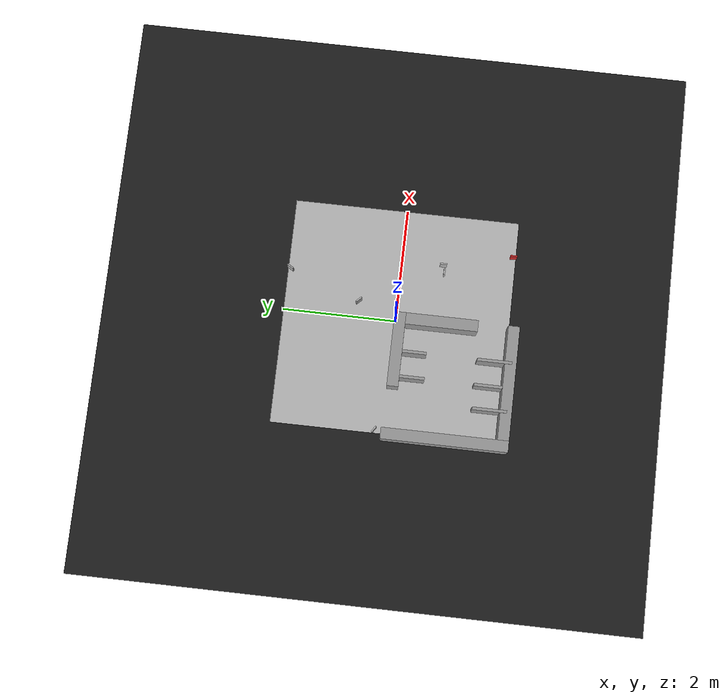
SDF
<sdf version="1.7">
 <world name="default">
  <scene>
   <ambient>0.8 0.8 0.8 1</ambient>
   <shadows>0</shadows>
   <grid>0</grid>
   <background>0.7 0.7 0.7 1</background>
  </scene>
  <model name="course">
   <static>1</static>
   <link name="course_link">
    <collision name="course_collision">
     <geometry><plane><normal>0 0 1</normal><size>4 4</size></plane></geometry>
     <surface><friction><ode><mu>100</mu><mu2>50</mu2></ode></friction></surface>
    </collision>
    <visual name="course_visual">
     <cast_shadows>0</cast_shadows>
     <geometry><plane><normal>0 0 1</normal><size>4 4</size></plane></geometry>
     <material>
      <script>
       <uri>model://turtlebot3_autorace_2020/course/materials/scripts</uri>
       <uri>model://turtlebot3_autorace_2020/course/materials/textures</uri>
       <name>course</name>
      </script>
     </material>
    </visual>
   </link>
   <pose>0 0 0 0 0 -3.14</pose>
  </model>
  <model name="traffic_light">
   <link name="traffic_light">
    <collision name="collision"><geometry><box><size>0.12 0.025 0.25</size></box></geometry></collision>
    <visual name="visual">
     <geometry><box><size>0.12 0.025 0.25</size></box></geometry>
     <material>
      <script>
       <uri>model://turtlebot3_autorace_2020/traffic_light/materials/scripts</uri>
       <uri>model://turtlebot3_autorace_2020/traffic_light/materials/textures</uri>
       <name>traffic_light_red</name>
      </script>
     </material>
    </visual>
   </link>
   <plugin name="traffic_light_plugin" filename="libtraffic_light_plugin.so"/>
   <static>1</static>
   <pose>1.35228 -1.94995 0.13 0 0 -1.57</pose>
  </model>
  <model name="traffic_parking">
   <static>1</static>
   <link name="box">
    <collision name="collision"><geometry><box><size>0.12 0.025 0.25</size></box></geometry></collision>
    <visual name="visual">
     <geometry><box><size>0.12 0.025 0.25</size></box></geometry>
     <material>
      <script>
       <uri>model://turtlebot3_autorace_2020/traffic_parking/materials/scripts</uri>
       <uri>model://turtlebot3_autorace_2020/traffic_parking/materials/textures</uri>
       <name>traffic_parking</name>
      </script>
     </material>
    </visual>
   </link>
   <pose>0.740621 1.95106 0.130019 -0.009294 0.015839 -2.10067</pose>
  </model>
  <model name="traffic_noentry">
   <static>1</static>
   <link name="box">
    <collision name="collision"><geometry><box><size>0.12 0.025 0.25</size></box></geometry></collision>
    <visual name="visual">
     <geometry><box><size>0.12 0.025 0.25</size></box></geometry>
     <material>
      <script>
       <uri>model://turtlebot3_autorace_2020/traffic_noentry/materials/scripts</uri>
       <uri>model://turtlebot3_autorace_2020/traffic_noentry/materials/textures</uri>
       <name>traffic_noentry</name>
      </script>
     </material>
    </visual>
   </link>
   <pose>0.95 -0.758 0.125 0 -0 0</pose>
  </model>
  <model name="traffic_right">
   <static>1</static>
   <link name="box">
    <collision name="collision"><geometry><box><size>0.12 0.025 0.25</size></box></geometry></collision>
    <visual name="visual">
     <geometry><box><size>0.12 0.025 0.25</size></box></geometry>
     <material>
      <script>
       <uri>model://turtlebot3_autorace_2020/traffic_right/materials/scripts</uri>
       <uri>model://turtlebot3_autorace_2020/traffic_right/materials/textures</uri>
       <name>traffic_right</name>
      </script>
     </material>
    </visual>
   </link>
   <pose>1.08 -0.728 0.125 0 0 -1.57</pose>
  </model>
  <light name="sun" type="directional">
   <pose>0 0 10 0 -0 0</pose>
   <diffuse>0.8 0.8 0.8 1</diffuse>
   <specular>0.1 0.1 0.1 1</specular>
   <attenuation>
    <range>1000</range>
    <constant>0.9</constant>
    <linear>0.01</linear>
    <quadratic>0.001</quadratic>
   </attenuation>
   <direction>-0.5 0.5 -1</direction>
   <spot><inner_angle>0</inner_angle><outer_angle>0</outer_angle><falloff>0</falloff></spot>
  </light>
  <model name="ground2">
   <pose>0.019006 0.209731 -0.1 0 -0 0</pose>
   <static>1</static>
   <link name="ground">
    <collision name="ground_coll"><geometry><box><size>8 8 0.01</size></box></geometry></collision>
    <visual name="ground_vis">
     <geometry><box><size>10 10 0.01</size></box></geometry>
     <material>
      <script><uri>file://media/materials/scripts/gazebo.material</uri><name>Gazebo/FlatBlack</name></script>
     </material>
    </visual>
   </link>
  </model>
  <gravity>0 0 -9.8</gravity>
  <magnetic_field>6e-06 2.3e-05 -4.2e-05</magnetic_field>
  <atmosphere type="adiabatic"/>
  <physics name="default_physics" default="0" type="ode">
   <max_step_size>0.001</max_step_size>
   <real_time_factor>1</real_time_factor>
   <real_time_update_rate>1000</real_time_update_rate>
  </physics>
  <spherical_coordinates>
   <surface_model>EARTH_WGS84</surface_model>
   <latitude_deg>0</latitude_deg>
   <longitude_deg>0</longitude_deg>
   <elevation>0</elevation>
   <heading_deg>0</heading_deg>
  </spherical_coordinates>
  <light name="user_point_light_1" type="point">
   <pose>-1.64815 0.604519 1 0 -0 0</pose>
   <diffuse>0.5 0.5 0.5 1</diffuse>
   <specular>0.1 0.1 0.1 1</specular>
   <attenuation>
    <range>20</range>
    <constant>0.5</constant>
    <linear>0.01</linear>
    <quadratic>0.001</quadratic>
   </attenuation>
   <cast_shadows>0</cast_shadows>
   <direction>0 0 -1</direction>
   <spot><inner_angle>0</inner_angle><outer_angle>0</outer_angle><falloff>0</falloff></spot>
  </light>
  <light name="user_point_light_2" type="point">
   <pose>1.63854 1.69565 1 0 -0 0</pose>
   <diffuse>0.5 0.5 0.5 1</diffuse>
   <specular>0.1 0.1 0.1 1</specular>
   <attenuation>
    <range>20</range>
    <constant>0.5</constant>
    <linear>0.01</linear>
    <quadratic>0.001</quadratic>
   </attenuation>
   <cast_shadows>0</cast_shadows>
   <direction>0 0 -1</direction>
   <spot><inner_angle>0</inner_angle><outer_angle>0</outer_angle><falloff>0</falloff></spot>
  </light>
  <light name="user_point_light_3" type="point">
   <pose>0.42 -3.31 1 0 -0 0</pose>
   <diffuse>0.5 0.5 0.5 1</diffuse>
   <specular>0.1 0.1 0.1 1</specular>
   <attenuation>
    <range>20</range>
    <constant>0.5</constant>
    <linear>0.01</linear>
    <quadratic>0.001</quadratic>
   </attenuation>
   <cast_shadows>0</cast_shadows>
   <direction>0 0 -1</direction>
   <spot><inner_angle>0</inner_angle><outer_angle>0</outer_angle><falloff>0</falloff></spot>
  </light>
  <audio><device>default</device></audio>
  <model name="unit_box_0_0">
   <link name="link">
    <inertial>
     <mass>1</mass>
     <inertia>
      <ixx>0.166667</ixx>
      <ixy>0</ixy>
      <ixz>0</ixz>
      <iyy>0.166667</iyy>
      <iyz>0</iyz>
      <izz>0.166667</izz>
     </inertia>
    </inertial>
    <visual name="visual">
     <geometry><box><size>0.2 1.46 0.5</size></box></geometry>
     <material>
      <script><name>Gazebo/Grey</name><uri>file://media/materials/scripts/gazebo.material</uri></script>
      <shader type="pixel"><normal_map>__default__</normal_map></shader>
      <ambient>0.3 0.3 0.3 1</ambient>
      <diffuse>0.7 0.7 0.7 1</diffuse>
      <specular>0.01 0.01 0.01 1</specular>
      <emissive>0 0 0 1</emissive>
     </material>
    </visual>
    <collision name="collision">
     <geometry><box><size>0.2 1.46 0.5</size></box></geometry>
     <surface>
      <friction>
       <ode><mu>1</mu><mu2>1</mu2><fdir1>0 0 0</fdir1><slip1>0</slip1><slip2>0</slip2></ode>
       <torsional>
        <coefficient>1</coefficient>
        <patch_radius>0</patch_radius>
        <surface_radius>0</surface_radius>
        <use_patch_radius>1</use_patch_radius>
        <ode><slip>0</slip></ode>
       </torsional>
      </friction>
      <bounce><restitution_coefficient>0</restitution_coefficient><threshold>1e+06</threshold></bounce>
      <contact>
       <collide_without_contact>0</collide_without_contact>
       <collide_without_contact_bitmask>1</collide_without_contact_bitmask>
       <collide_bitmask>1</collide_bitmask>
       <ode>
        <soft_cfm>0</soft_cfm>
        <soft_erp>0.2</soft_erp>
        <kp>1e+13</kp>
        <kd>1</kd>
        <max_vel>0.01</max_vel>
        <min_depth>0</min_depth>
       </ode>
       <bullet>
        <split_impulse>1</split_impulse>
        <split_impulse_penetration_threshold>-0.01</split_impulse_penetration_threshold>
        <soft_cfm>0</soft_cfm>
        <soft_erp>0.2</soft_erp>
        <kp>1e+13</kp>
        <kd>1</kd>
       </bullet>
      </contact>
     </surface>
    </collision>
   </link>
   <static>1</static>
   <pose>-0.000186 -0.697501 0.244963 0 -0 0</pose>
  </model>
  <model name="unit_line_4_clone_0_clone_0_clone_1_clone">
   <link name="link">
    <inertial>
     <mass>1</mass>
     <inertia>
      <ixx>0.166667</ixx>
      <ixy>0</ixy>
      <ixz>0</ixz>
      <iyy>0.166667</iyy>
      <iyz>0</iyz>
      <izz>0.166667</izz>
     </inertia>
    </inertial>
    <visual name="visual">
     <geometry><box><size>0.05 0.6 0.5</size></box></geometry>
     <material>
      <script><name>Gazebo/Grey</name><uri>file://media/materials/scripts/gazebo.material</uri></script>
      <shader type="pixel"><normal_map>__default__</normal_map></shader>
      <ambient>0.3 0.3 0.3 1</ambient>
      <diffuse>0.7 0.7 0.7 1</diffuse>
      <specular>0.01 0.01 0.01 1</specular>
      <emissive>0 0 0 1</emissive>
     </material>
    </visual>
    <collision name="collision">
     <geometry><box><size>0.05 0.6 0.5</size></box></geometry>
     <surface>
      <friction>
       <ode><mu>1</mu><mu2>1</mu2><fdir1>0 0 0</fdir1><slip1>0</slip1><slip2>0</slip2></ode>
       <torsional>
        <coefficient>1</coefficient>
        <patch_radius>0</patch_radius>
        <surface_radius>0</surface_radius>
        <use_patch_radius>1</use_patch_radius>
        <ode><slip>0</slip></ode>
       </torsional>
      </friction>
      <bounce><restitution_coefficient>0</restitution_coefficient><threshold>1e+06</threshold></bounce>
      <contact>
       <collide_without_contact>0</collide_without_contact>
       <collide_without_contact_bitmask>1</collide_without_contact_bitmask>
       <collide_bitmask>1</collide_bitmask>
       <ode>
        <soft_cfm>0</soft_cfm>
        <soft_erp>0.2</soft_erp>
        <kp>1e+13</kp>
        <kd>1</kd>
        <max_vel>0.01</max_vel>
        <min_depth>0</min_depth>
       </ode>
       <bullet>
        <split_impulse>1</split_impulse>
        <split_impulse_penetration_threshold>-0.01</split_impulse_penetration_threshold>
        <soft_cfm>0</soft_cfm>
        <soft_erp>0.2</soft_erp>
        <kp>1e+13</kp>
        <kd>1</kd>
       </bullet>
      </contact>
     </surface>
    </collision>
   </link>
   <static>1</static>
   <pose>-0.573492 -0.288703 0.237034 0 -0 0</pose>
  </model>
  <model name="unit_line_4_clone_0_clone_0_clone_1">
   <link name="link">
    <inertial>
     <mass>1</mass>
     <inertia>
      <ixx>0.166667</ixx>
      <ixy>0</ixy>
      <ixz>0</ixz>
      <iyy>0.166667</iyy>
      <iyz>0</iyz>
      <izz>0.166667</izz>
     </inertia>
    </inertial>
    <visual name="visual">
     <geometry><box><size>0.05 0.6 0.5</size></box></geometry>
     <material>
      <script><name>Gazebo/Grey</name><uri>file://media/materials/scripts/gazebo.material</uri></script>
      <shader type="pixel"><normal_map>__default__</normal_map></shader>
      <ambient>0.3 0.3 0.3 1</ambient>
      <diffuse>0.7 0.7 0.7 1</diffuse>
      <specular>0.01 0.01 0.01 1</specular>
      <emissive>0 0 0 1</emissive>
     </material>
    </visual>
    <collision name="collision">
     <geometry><box><size>0.05 0.6 0.5</size></box></geometry>
     <surface>
      <friction>
       <ode><mu>1</mu><mu2>1</mu2><fdir1>0 0 0</fdir1><slip1>0</slip1><slip2>0</slip2></ode>
       <torsional>
        <coefficient>1</coefficient>
        <patch_radius>0</patch_radius>
        <surface_radius>0</surface_radius>
        <use_patch_radius>1</use_patch_radius>
        <ode><slip>0</slip></ode>
       </torsional>
      </friction>
      <bounce><restitution_coefficient>0</restitution_coefficient><threshold>1e+06</threshold></bounce>
      <contact>
       <collide_without_contact>0</collide_without_contact>
       <collide_without_contact_bitmask>1</collide_without_contact_bitmask>
       <collide_bitmask>1</collide_bitmask>
       <ode>
        <soft_cfm>0</soft_cfm>
        <soft_erp>0.2</soft_erp>
        <kp>1e+13</kp>
        <kd>1</kd>
        <max_vel>0.01</max_vel>
        <min_depth>0</min_depth>
       </ode>
       <bullet>
        <split_impulse>1</split_impulse>
        <split_impulse_penetration_threshold>-0.01</split_impulse_penetration_threshold>
        <soft_cfm>0</soft_cfm>
        <soft_erp>0.2</soft_erp>
        <kp>1e+13</kp>
        <kd>1</kd>
       </bullet>
      </contact>
     </surface>
    </collision>
   </link>
   <static>1</static>
   <pose>-1.01333 -0.301704 0.230222 0 -0 0</pose>
  </model>
  <model name="unit_line_4_clone_0_clone_0_clone">
   <link name="link">
    <inertial>
     <mass>1</mass>
     <inertia>
      <ixx>0.166667</ixx>
      <ixy>0</ixy>
      <ixz>0</ixz>
      <iyy>0.166667</iyy>
      <iyz>0</iyz>
      <izz>0.166667</izz>
     </inertia>
    </inertial>
    <visual name="visual">
     <geometry><box><size>0.05 0.6 0.5</size></box></geometry>
     <material>
      <script><name>Gazebo/Grey</name><uri>file://media/materials/scripts/gazebo.material</uri></script>
      <shader type="pixel"><normal_map>__default__</normal_map></shader>
      <ambient>0.3 0.3 0.3 1</ambient>
      <diffuse>0.7 0.7 0.7 1</diffuse>
      <specular>0.01 0.01 0.01 1</specular>
      <emissive>0 0 0 1</emissive>
     </material>
    </visual>
    <collision name="collision">
     <geometry><box><size>0.05 0.6 0.5</size></box></geometry>
     <surface>
      <friction>
       <ode><mu>1</mu><mu2>1</mu2><fdir1>0 0 0</fdir1><slip1>0</slip1><slip2>0</slip2></ode>
       <torsional>
        <coefficient>1</coefficient>
        <patch_radius>0</patch_radius>
        <surface_radius>0</surface_radius>
        <use_patch_radius>1</use_patch_radius>
        <ode><slip>0</slip></ode>
       </torsional>
      </friction>
      <bounce><restitution_coefficient>0</restitution_coefficient><threshold>1e+06</threshold></bounce>
      <contact>
       <collide_without_contact>0</collide_without_contact>
       <collide_without_contact_bitmask>1</collide_without_contact_bitmask>
       <collide_bitmask>1</collide_bitmask>
       <ode>
        <soft_cfm>0</soft_cfm>
        <soft_erp>0.2</soft_erp>
        <kp>1e+13</kp>
        <kd>1</kd>
        <max_vel>0.01</max_vel>
        <min_depth>0</min_depth>
       </ode>
       <bullet>
        <split_impulse>1</split_impulse>
        <split_impulse_penetration_threshold>-0.01</split_impulse_penetration_threshold>
        <soft_cfm>0</soft_cfm>
        <soft_erp>0.2</soft_erp>
        <kp>1e+13</kp>
        <kd>1</kd>
       </bullet>
      </contact>
     </surface>
    </collision>
   </link>
   <static>1</static>
   <pose>-0.58014 -1.77121 0.256353 0 -0 0</pose>
  </model>
  <model name="unit_line_4_clone_0_clone_0">
   <link name="link">
    <inertial>
     <mass>1</mass>
     <inertia>
      <ixx>0.166667</ixx>
      <ixy>0</ixy>
      <ixz>0</ixz>
      <iyy>0.166667</iyy>
      <iyz>0</iyz>
      <izz>0.166667</izz>
     </inertia>
    </inertial>
    <visual name="visual">
     <geometry><box><size>0.05 0.6 0.5</size></box></geometry>
     <material>
      <script><name>Gazebo/Grey</name><uri>file://media/materials/scripts/gazebo.material</uri></script>
      <shader type="pixel"><normal_map>__default__</normal_map></shader>
      <ambient>0.3 0.3 0.3 1</ambient>
      <diffuse>0.7 0.7 0.7 1</diffuse>
      <specular>0.01 0.01 0.01 1</specular>
      <emissive>0 0 0 1</emissive>
     </material>
    </visual>
    <collision name="collision">
     <geometry><box><size>0.05 0.6 0.5</size></box></geometry>
     <surface>
      <friction>
       <ode><mu>1</mu><mu2>1</mu2><fdir1>0 0 0</fdir1><slip1>0</slip1><slip2>0</slip2></ode>
       <torsional>
        <coefficient>1</coefficient>
        <patch_radius>0</patch_radius>
        <surface_radius>0</surface_radius>
        <use_patch_radius>1</use_patch_radius>
        <ode><slip>0</slip></ode>
       </torsional>
      </friction>
      <bounce><restitution_coefficient>0</restitution_coefficient><threshold>1e+06</threshold></bounce>
      <contact>
       <collide_without_contact>0</collide_without_contact>
       <collide_without_contact_bitmask>1</collide_without_contact_bitmask>
       <collide_bitmask>1</collide_bitmask>
       <ode>
        <soft_cfm>0</soft_cfm>
        <soft_erp>0.2</soft_erp>
        <kp>1e+13</kp>
        <kd>1</kd>
        <max_vel>0.01</max_vel>
        <min_depth>0</min_depth>
       </ode>
       <bullet>
        <split_impulse>1</split_impulse>
        <split_impulse_penetration_threshold>-0.01</split_impulse_penetration_threshold>
        <soft_cfm>0</soft_cfm>
        <soft_erp>0.2</soft_erp>
        <kp>1e+13</kp>
        <kd>1</kd>
       </bullet>
      </contact>
     </surface>
    </collision>
   </link>
   <static>1</static>
   <pose>-1.01443 -1.75808 0.214041 0 -0 0</pose>
  </model>
  <model name="unit_line_4_clone_0_clone_0_clone_0">
   <link name="link">
    <inertial>
     <mass>1</mass>
     <inertia>
      <ixx>0.166667</ixx>
      <ixy>0</ixy>
      <ixz>0</ixz>
      <iyy>0.166667</iyy>
      <iyz>0</iyz>
      <izz>0.166667</izz>
     </inertia>
    </inertial>
    <visual name="visual">
     <geometry><box><size>0.05 0.6 0.5</size></box></geometry>
     <material>
      <script><name>Gazebo/Grey</name><uri>file://media/materials/scripts/gazebo.material</uri></script>
      <shader type="pixel"><normal_map>__default__</normal_map></shader>
      <ambient>0.3 0.3 0.3 1</ambient>
      <diffuse>0.7 0.7 0.7 1</diffuse>
      <specular>0.01 0.01 0.01 1</specular>
      <emissive>0 0 0 1</emissive>
     </material>
    </visual>
    <collision name="collision">
     <geometry><box><size>0.05 0.6 0.5</size></box></geometry>
     <surface>
      <friction>
       <ode><mu>1</mu><mu2>1</mu2><fdir1>0 0 0</fdir1><slip1>0</slip1><slip2>0</slip2></ode>
       <torsional>
        <coefficient>1</coefficient>
        <patch_radius>0</patch_radius>
        <surface_radius>0</surface_radius>
        <use_patch_radius>1</use_patch_radius>
        <ode><slip>0</slip></ode>
       </torsional>
      </friction>
      <bounce><restitution_coefficient>0</restitution_coefficient><threshold>1e+06</threshold></bounce>
      <contact>
       <collide_without_contact>0</collide_without_contact>
       <collide_without_contact_bitmask>1</collide_without_contact_bitmask>
       <collide_bitmask>1</collide_bitmask>
       <ode>
        <soft_cfm>0</soft_cfm>
        <soft_erp>0.2</soft_erp>
        <kp>1e+13</kp>
        <kd>1</kd>
        <max_vel>0.01</max_vel>
        <min_depth>0</min_depth>
       </ode>
       <bullet>
        <split_impulse>1</split_impulse>
        <split_impulse_penetration_threshold>-0.01</split_impulse_penetration_threshold>
        <soft_cfm>0</soft_cfm>
        <soft_erp>0.2</soft_erp>
        <kp>1e+13</kp>
        <kd>1</kd>
       </bullet>
      </contact>
     </surface>
    </collision>
   </link>
   <static>1</static>
   <pose>-1.42869 -1.76468 0.253297 0 -0 0</pose>
  </model>
  <model name="traffic_construction_0">
   <static>1</static>
   <link name="box">
    <collision name="collision"><geometry><box><size>0.12 0.025 0.25</size></box></geometry></collision>
    <visual name="visual">
     <geometry><box><size>0.12 0.025 0.25</size></box></geometry>
     <material>
      <script>
       <uri>model://turtlebot3_autorace_2020/traffic_construction/materials/scripts</uri>
       <uri>model://turtlebot3_autorace_2020/traffic_construction/materials/textures</uri>
       <name>traffic_construction</name>
      </script>
     </material>
    </visual>
   </link>
   <pose>0.2821 0.68589 0.130412 -0.012391 0.025339 -0.802317</pose>
  </model>
  <model name="traffic_tunnel">
   <pose>-1.94942 0.174853 0.125 0 -6e-06 -0.582464</pose>
   <link name="box">
    <collision name="collision"><geometry><box><size>0.12 0.025 0.25</size></box></geometry></collision>
    <visual name="visual">
     <geometry><box><size>0.12 0.025 0.25</size></box></geometry>
     <material>
      <script>
       <uri>model://turtlebot3_autorace_2020/traffic_tunnel/materials/scripts</uri>
       <uri>model://turtlebot3_autorace_2020/traffic_tunnel/materials/textures</uri>
       <name>traffic_tunnel</name>
      </script>
     </material>
    </visual>
    <inertial>
     <inertia><ixx>1</ixx><ixy>0</ixy><ixz>0</ixz><iyy>1</iyy><iyz>0</iyz><izz>1</izz></inertia>
     <mass>1</mass>
    </inertial>
   </link>
  </model>
  <model name="unit_box_0_2">
   <link name="link">
    <inertial>
     <mass>1</mass>
     <inertia>
      <ixx>0.166667</ixx>
      <ixy>0</ixy>
      <ixz>0</ixz>
      <iyy>0.166667</iyy>
      <iyz>0</iyz>
      <izz>0.166667</izz>
     </inertia>
    </inertial>
    <visual name="visual">
     <geometry><box><size>0.2 1.3 0.5</size></box></geometry>
     <material>
      <script><name>Gazebo/Grey</name><uri>file://media/materials/scripts/gazebo.material</uri></script>
      <shader type="pixel"><normal_map>__default__</normal_map></shader>
      <ambient>0.3 0.3 0.3 1</ambient>
      <diffuse>0.7 0.7 0.7 1</diffuse>
      <specular>0.01 0.01 0.01 1</specular>
      <emissive>0 0 0 1</emissive>
     </material>
    </visual>
    <collision name="collision">
     <geometry><box><size>0.2 1.3 0.5</size></box></geometry>
     <surface>
      <friction>
       <ode><mu>1</mu><mu2>1</mu2><fdir1>0 0 0</fdir1><slip1>0</slip1><slip2>0</slip2></ode>
       <torsional>
        <coefficient>1</coefficient>
        <patch_radius>0</patch_radius>
        <surface_radius>0</surface_radius>
        <use_patch_radius>1</use_patch_radius>
        <ode><slip>0</slip></ode>
       </torsional>
      </friction>
      <bounce><restitution_coefficient>0</restitution_coefficient><threshold>1e+06</threshold></bounce>
      <contact>
       <collide_without_contact>0</collide_without_contact>
       <collide_without_contact_bitmask>1</collide_without_contact_bitmask>
       <collide_bitmask>1</collide_bitmask>
       <ode>
        <soft_cfm>0</soft_cfm>
        <soft_erp>0.2</soft_erp>
        <kp>1e+13</kp>
        <kd>1</kd>
        <max_vel>0.01</max_vel>
        <min_depth>0</min_depth>
       </ode>
       <bullet>
        <split_impulse>1</split_impulse>
        <split_impulse_penetration_threshold>-0.01</split_impulse_penetration_threshold>
        <soft_cfm>0</soft_cfm>
        <soft_erp>0.2</soft_erp>
        <kp>1e+13</kp>
        <kd>1</kd>
       </bullet>
      </contact>
     </surface>
    </collision>
   </link>
   <static>1</static>
   <pose>-0.550832 -0.065956 0.254982 0 0 -1.5714</pose>
  </model>
  <model name="unit_box_0_2_clone">
   <link name="link">
    <inertial>
     <mass>1</mass>
     <inertia>
      <ixx>0.166667</ixx>
      <ixy>0</ixy>
      <ixz>0</ixz>
      <iyy>0.166667</iyy>
      <iyz>0</iyz>
      <izz>0.166667</izz>
     </inertia>
    </inertial>
    <visual name="visual">
     <geometry><box><size>0.2 2.1 0.5</size></box></geometry>
     <material>
      <script><name>Gazebo/Grey</name><uri>file://media/materials/scripts/gazebo.material</uri></script>
      <shader type="pixel"><normal_map>__default__</normal_map></shader>
      <ambient>0.3 0.3 0.3 1</ambient>
      <diffuse>0.7 0.7 0.7 1</diffuse>
      <specular>0.01 0.01 0.01 1</specular>
      <emissive>0 0 0 1</emissive>
     </material>
    </visual>
    <collision name="collision">
     <geometry><box><size>0.2 2.1 0.5</size></box></geometry>
     <surface>
      <friction>
       <ode><mu>1</mu><mu2>1</mu2><fdir1>0 0 0</fdir1><slip1>0</slip1><slip2>0</slip2></ode>
       <torsional>
        <coefficient>1</coefficient>
        <patch_radius>0</patch_radius>
        <surface_radius>0</surface_radius>
        <use_patch_radius>1</use_patch_radius>
        <ode><slip>0</slip></ode>
       </torsional>
      </friction>
      <bounce><restitution_coefficient>0</restitution_coefficient><threshold>1e+06</threshold></bounce>
      <contact>
       <collide_without_contact>0</collide_without_contact>
       <collide_without_contact_bitmask>1</collide_without_contact_bitmask>
       <collide_bitmask>1</collide_bitmask>
       <ode>
        <soft_cfm>0</soft_cfm>
        <soft_erp>0.2</soft_erp>
        <kp>1e+13</kp>
        <kd>1</kd>
        <max_vel>0.01</max_vel>
        <min_depth>0</min_depth>
       </ode>
       <bullet>
        <split_impulse>1</split_impulse>
        <split_impulse_penetration_threshold>-0.01</split_impulse_penetration_threshold>
        <soft_cfm>0</soft_cfm>
        <soft_erp>0.2</soft_erp>
        <kp>1e+13</kp>
        <kd>1</kd>
       </bullet>
      </contact>
     </surface>
    </collision>
   </link>
   <static>1</static>
   <pose>-0.98597 -2.04916 0.251015 0 0 -1.5714</pose>
  </model>
  <model name="unit_box_0_0_clone">
   <link name="link">
    <inertial>
     <mass>1</mass>
     <inertia>
      <ixx>0.166667</ixx>
      <ixy>0</ixy>
      <ixz>0</ixz>
      <iyy>0.166667</iyy>
      <iyz>0</iyz>
      <izz>0.166667</izz>
     </inertia>
    </inertial>
    <visual name="visual">
     <geometry><box><size>0.2 2.2 0.5</size></box></geometry>
     <material>
      <script><name>Gazebo/Grey</name><uri>file://media/materials/scripts/gazebo.material</uri></script>
      <shader type="pixel"><normal_map>__default__</normal_map></shader>
      <ambient>0.3 0.3 0.3 1</ambient>
      <diffuse>0.7 0.7 0.7 1</diffuse>
      <specular>0.01 0.01 0.01 1</specular>
      <emissive>0 0 0 1</emissive>
     </material>
    </visual>
    <collision name="collision">
     <geometry><box><size>0.2 2.2 1</size></box></geometry>
     <surface>
      <friction>
       <ode><mu>1</mu><mu2>1</mu2><fdir1>0 0 0</fdir1><slip1>0</slip1><slip2>0</slip2></ode>
       <torsional>
        <coefficient>1</coefficient>
        <patch_radius>0</patch_radius>
        <surface_radius>0</surface_radius>
        <use_patch_radius>1</use_patch_radius>
        <ode><slip>0</slip></ode>
       </torsional>
      </friction>
      <bounce><restitution_coefficient>0</restitution_coefficient><threshold>1e+06</threshold></bounce>
      <contact>
       <collide_without_contact>0</collide_without_contact>
       <collide_without_contact_bitmask>1</collide_without_contact_bitmask>
       <collide_bitmask>1</collide_bitmask>
       <ode>
        <soft_cfm>0</soft_cfm>
        <soft_erp>0.2</soft_erp>
        <kp>1e+13</kp>
        <kd>1</kd>
        <max_vel>0.01</max_vel>
        <min_depth>0</min_depth>
       </ode>
       <bullet>
        <split_impulse>1</split_impulse>
        <split_impulse_penetration_threshold>-0.01</split_impulse_penetration_threshold>
        <soft_cfm>0</soft_cfm>
        <soft_erp>0.2</soft_erp>
        <kp>1e+13</kp>
        <kd>1</kd>
       </bullet>
      </contact>
     </surface>
    </collision>
   </link>
   <static>1</static>
   <pose>-2.01997 -1.04874 0.252788 0 -0 0</pose>
  </model>
 </world>
</sdf>
